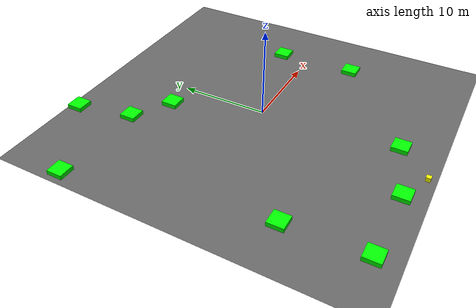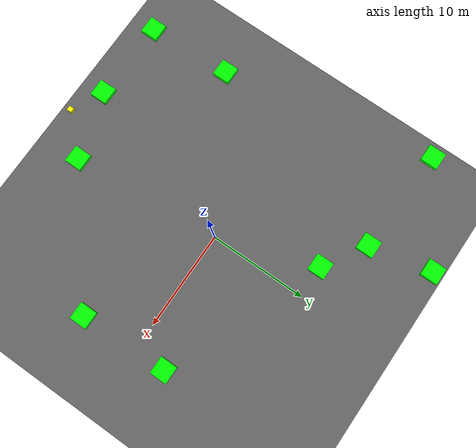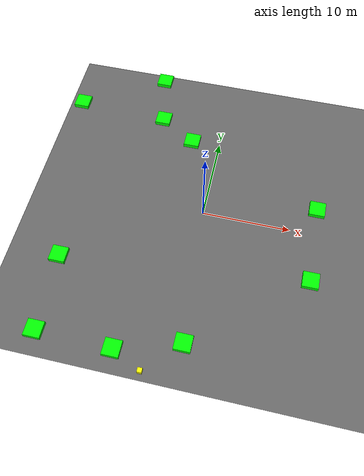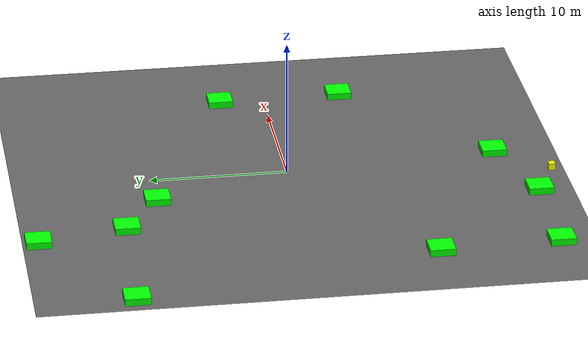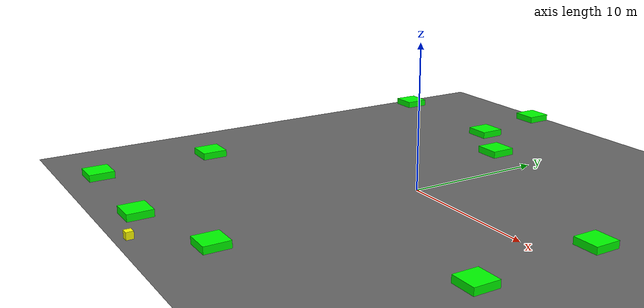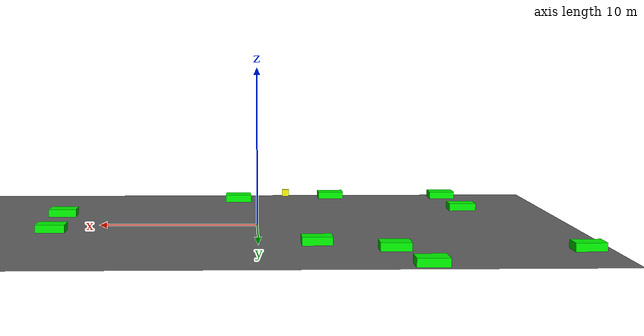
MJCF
<mujoco model="baseline_lvl5_obs10_seed4009">
    <compiler angle="degree" coordinate="local" inertiafromgeom="true"/>
    <option integrator="RK4" timestep="0.01"/>

    <asset>
        <texture builtin="gradient" height="100" rgb1="0.6 0.8 1" rgb2="0 0 0" type="skybox" width="100"/>
        <texture name="floor_texture" type="2d" builtin="checker" width="100" height="100" rgb1="0 0 0" rgb2="0.8 0.8 0.8"/>
        <material name="MatPlane" reflectance="0.5" shininess="1" specular="1" texrepeat="10 10" texture="floor_texture"/>
    </asset>

    <!-- Excluding the contact between the agent and the goal, and the agent and the floor -->
    <contact>
        <exclude body1="agent" body2="goal"/>
        <exclude body1 = "agent" body2 = "floor"/>
    </contact>

    <extension>
        <plugin plugin = "mujoco.pid">
            <instance name = "pid1">
                <config key="kp" value="2"/>
                <config key="ki" value="0"/>
                <config key="kd" value="55"/>
            </instance>
        </plugin>
    </extension>

    <worldbody>
        <light cutoff="100" diffuse="1 1 1" dir="-0 0 -1.3" directional="true" exponent="1" pos="0 0 1.3" specular=".1 .1 .1"/>
        <body name="floor" pos="0 0 0">
            <geom name="floor_geom" type="plane" size="20 20 0.1" material="MatPlane"/>
        </body>

        <!-- Goal -->
        <body name="goal" pos="0.000 0.000 0">
            <geom name="goal_geom" type="plane" size="0.5 0.5 1" pos="0 0 0" rgba="1 0 0 1"/>
        </body>

        <!-- Agent -->
        <body name="agent" pos="-2.267 -19.097 0.25">
            <joint name="j1" type="slide" axis ="1 0 0 "/>
            <joint name="j2" type="slide" axis ="0 1 0 "/>
            <geom name="agent_geom" type="box" size="0.25 0.25 0.250" rgba="1 1 0 1"/>
        </body>

    <body name="obstacle1" pos="-7.667 12.507 0.250">
      <geom name="obstacle1_geom" type="box"
            size="0.900 0.900 0.250"
            rgba="0 1 0 1"/>
    </body>
    <body name="obstacle2" pos="12.709 3.262 0.250">
      <geom name="obstacle2_geom" type="box"
            size="0.900 0.900 0.250"
            rgba="0 1 0 1"/>
    </body>
    <body name="obstacle3" pos="-9.009 18.871 0.250">
      <geom name="obstacle3_geom" type="box"
            size="0.900 0.900 0.250"
            rgba="0 1 0 1"/>
    </body>
    <body name="obstacle4" pos="-5.563 -17.530 0.250">
      <geom name="obstacle4_geom" type="box"
            size="0.900 0.900 0.250"
            rgba="0 1 0 1"/>
    </body>
    <body name="obstacle5" pos="12.963 -5.784 0.250">
      <geom name="obstacle5_geom" type="box"
            size="0.900 0.900 0.250"
            rgba="0 1 0 1"/>
    </body>
    <body name="obstacle6" pos="-14.235 -8.754 0.250">
      <geom name="obstacle6_geom" type="box"
            size="0.900 0.900 0.250"
            rgba="0 1 0 1"/>
    </body>
    <body name="obstacle7" pos="1.267 -15.431 0.250">
      <geom name="obstacle7_geom" type="box"
            size="0.900 0.900 0.250"
            rgba="0 1 0 1"/>
    </body>
    <body name="obstacle8" pos="-3.377 9.856 0.250">
      <geom name="obstacle8_geom" type="box"
            size="0.900 0.900 0.250"
            rgba="0 1 0 1"/>
    </body>
    <body name="obstacle9" pos="-18.509 13.008 0.250">
      <geom name="obstacle9_geom" type="box"
            size="0.900 0.900 0.250"
            rgba="0 1 0 1"/>
    </body>
    <body name="obstacle10" pos="-13.846 -17.388 0.250">
      <geom name="obstacle10_geom" type="box"
            size="0.900 0.900 0.250"
            rgba="0 1 0 1"/>
    </body>
    </worldbody>

    <actuator>
        <plugin joint="j1" plugin="mujoco.pid" instance="pid1" />
        <plugin joint="j2" plugin="mujoco.pid" instance="pid1"/>
    </actuator>

  <sensor>
    <distance name="dist1" geom1="agent_geom" geom2="obstacle1_geom" cutoff="1.5"/>
    <distance name="dist2" geom1="agent_geom" geom2="obstacle2_geom" cutoff="1.5"/>
    <distance name="dist3" geom1="agent_geom" geom2="obstacle3_geom" cutoff="1.5"/>
    <distance name="dist4" geom1="agent_geom" geom2="obstacle4_geom" cutoff="1.5"/>
    <distance name="dist5" geom1="agent_geom" geom2="obstacle5_geom" cutoff="1.5"/>
    <distance name="dist6" geom1="agent_geom" geom2="obstacle6_geom" cutoff="1.5"/>
    <distance name="dist7" geom1="agent_geom" geom2="obstacle7_geom" cutoff="1.5"/>
    <distance name="dist8" geom1="agent_geom" geom2="obstacle8_geom" cutoff="1.5"/>
    <distance name="dist9" geom1="agent_geom" geom2="obstacle9_geom" cutoff="1.5"/>
    <distance name="dist10" geom1="agent_geom" geom2="obstacle10_geom" cutoff="1.5"/>
  </sensor>
</mujoco>
